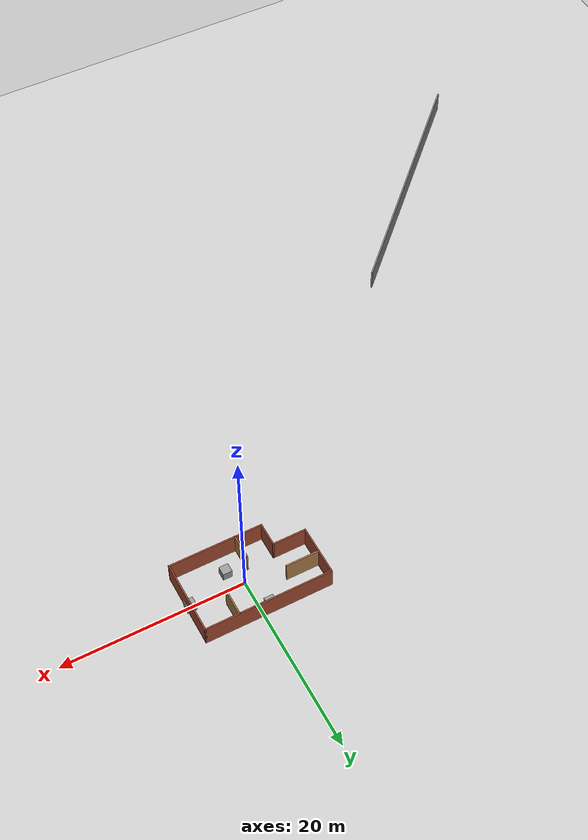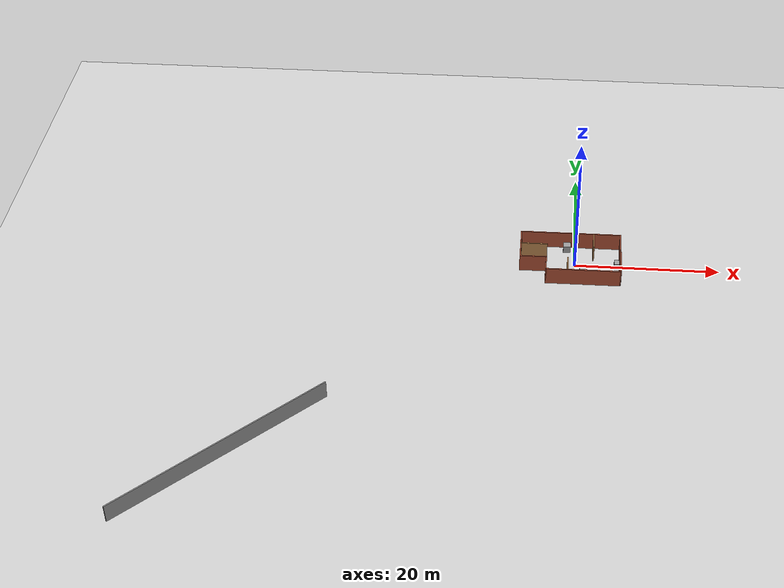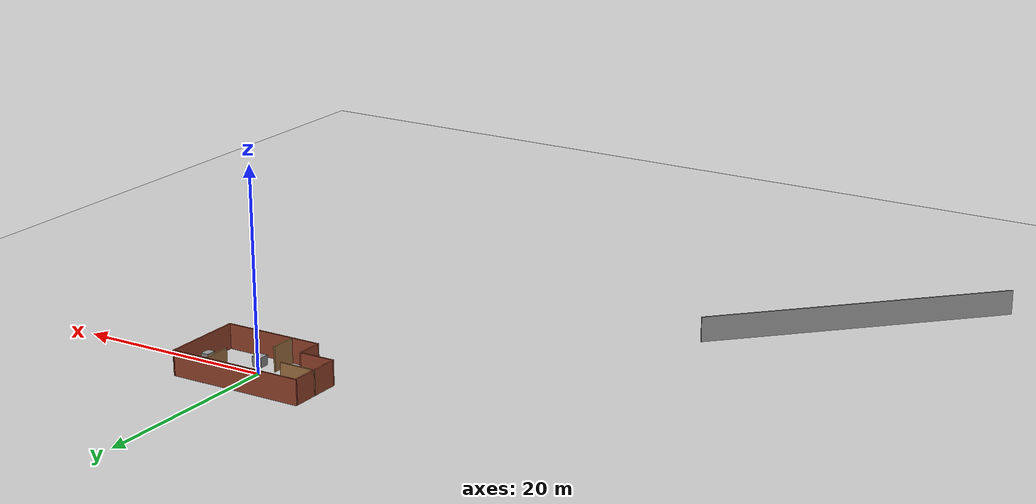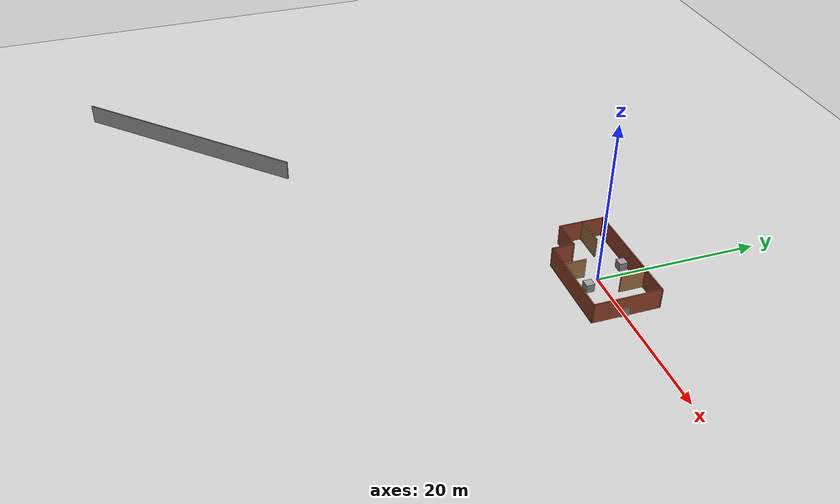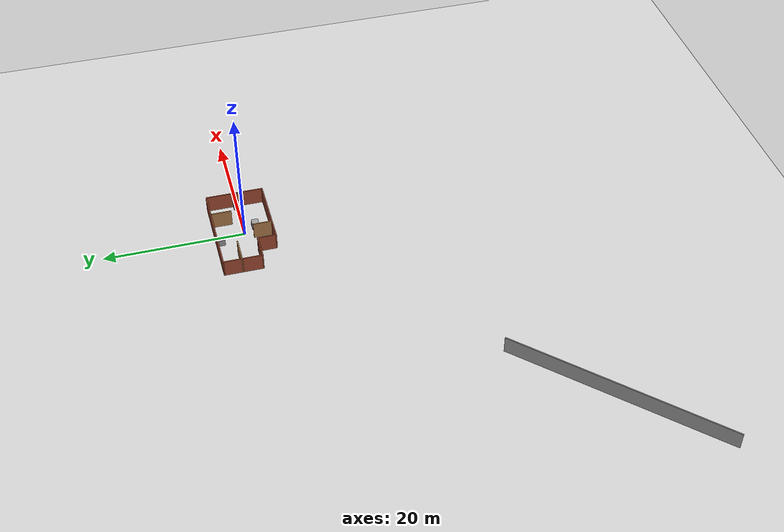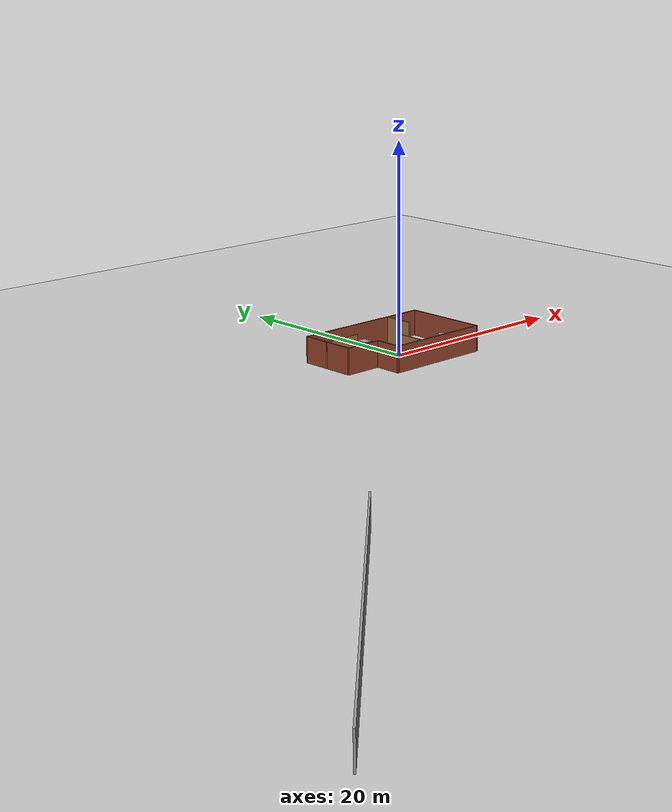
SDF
<sdf version='1.4'>
  <world name='default'>
    <!-- A global light source -->
    <include>
      <uri>model://sun</uri>
    </include>

    <!-- A ground plane -->
    <include>
      <uri>model://ground_plane</uri>
    </include>

    <physics type="ode">
      <real_time_update_rate>1000.0</real_time_update_rate>
      <max_step_size>0.001</max_step_size>
      <real_time_factor>1</real_time_factor>
      <ode>
        <solver>
          <type>quick</type>
          <iters>150</iters>
          <precon_iters>0</precon_iters>
          <sor>1.400000</sor>
          <use_dynamic_moi_rescaling>1</use_dynamic_moi_rescaling>
        </solver>
        <constraints>
          <cfm>0.00001</cfm>
          <erp>0.2</erp>
          <contact_max_correcting_vel>2000.000000</contact_max_correcting_vel>
          <contact_surface_layer>0.01000</contact_surface_layer>
        </constraints>
      </ode>
    </physics>

    <!-- Load world -->
    <include>
      <uri>model://home</uri>
    </include>

    <include>
      <name>box1</name>
      <uri>model://unit_box</uri>
      <pose>1.21529 -1.78228 0.5 0 -0 0</pose>
    </include>

    <include>
      <name>box2</name>
      <uri>model://unit_box</uri>
      <pose>-1.09981 3.49913 0.5 0 -0 0</pose>
    </include>

    <include>
      <name>box3</name>
      <uri>model://unit_box</uri>
      <pose>6.0 0 0.5 0 -0 0</pose>
    </include>

    <scene>
      <ambient>0.4 0.4 0.4 1</ambient>
      <background>0.7 0.7 0.7 1</background>
      <shadows>true</shadows>
    </scene>

    <gui fullscreen='0'>
      <camera name='user_camera'>
        <pose>0.8 0.0 12.0 0 1.5708 0</pose>
        <view_controller>orbit</view_controller>
      </camera>
    </gui>
  </world>
</sdf>

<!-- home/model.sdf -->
<sdf version='1.7'>
  <model name='home'>
    <pose>-23.5787 -23.4225 0 0 -0 0</pose>
    <link name='Wall_0'>
      <collision name='Wall_0_Collision'>
        <geometry>
          <box>
            <size>32 0.15 2.5</size>
          </box>
        </geometry>
        <pose>0 0 1.25 0 -0 0</pose>
      </collision>
      <visual name='Wall_0_Visual'>
        <pose>0 0 1.25 0 -0 0</pose>
        <geometry>
          <box>
            <size>32 0.15 2.5</size>
          </box>
        </geometry>
        <material>
          <script>
            <uri>file://media/materials/scripts/gazebo.material</uri>
            <name>Gazebo/Grey</name>
          </script>
          <ambient>1 1 1 1</ambient>
        </material>
        <meta>
          <layer>0</layer>
        </meta>
      </visual>
      <pose>-18.5974 -16.3462 0 0 -0 0.785398</pose>
    </link>
    <link name='Wall_14'>
      <collision name='Wall_14_Collision'>
        <geometry>
          <box>
            <size>2.75 0.15 2.5</size>
          </box>
        </geometry>
        <pose>0 0 1.25 0 -0 0</pose>
      </collision>
      <visual name='Wall_14_Visual'>
        <pose>0 0 1.25 0 -0 0</pose>
        <geometry>
          <box>
            <size>2.75 0.15 2.5</size>
          </box>
        </geometry>
        <material>
          <script>
            <uri>file://media/materials/scripts/gazebo.material</uri>
            <name>Gazebo/Wood</name>
          </script>
          <ambient>1 1 1 1</ambient>
        </material>
        <meta>
          <layer>0</layer>
        </meta>
      </visual>
      <pose>22.611 20.8524 0 0 -0 1.5708</pose>
    </link>
    <link name='Wall_16'>
      <collision name='Wall_16_Collision'>
        <geometry>
          <box>
            <size>3 0.15 2.5</size>
          </box>
        </geometry>
        <pose>0 0 1.25 0 -0 0</pose>
      </collision>
      <visual name='Wall_16_Visual'>
        <pose>0 0 1.25 0 -0 0</pose>
        <geometry>
          <box>
            <size>3 0.15 2.5</size>
          </box>
        </geometry>
        <material>
          <script>
            <uri>file://media/materials/scripts/gazebo.material</uri>
            <name>Gazebo/Wood</name>
          </script>
          <ambient>1 1 1 1</ambient>
        </material>
        <meta>
          <layer>0</layer>
        </meta>
      </visual>
      <pose>26.1871 26.1971 0 0 -0 -1.5708</pose>
    </link>
    <link name='Wall_18'>
      <collision name='Wall_18_Collision'>
        <geometry>
          <box>
            <size>2.75 0.15 2.5</size>
          </box>
        </geometry>
        <pose>0 0 1.25 0 -0 0</pose>
      </collision>
      <visual name='Wall_18_Visual'>
        <pose>0 0 1.25 0 -0 0</pose>
        <geometry>
          <box>
            <size>2.75 0.15 2.5</size>
          </box>
        </geometry>
        <material>
          <script>
            <uri>file://media/materials/scripts/gazebo.material</uri>
            <name>Gazebo/Bricks</name>
          </script>
          <ambient>1 1 1 1</ambient>
        </material>
        <meta>
          <layer>0</layer>
        </meta>
      </visual>
      <pose>19.6479 20.8379 0 0 -0 1.5708</pose>
    </link>
    <link name='Wall_19'>
      <collision name='Wall_19_Collision'>
        <geometry>
          <box>
            <size>3.75 0.15 2.5</size>
          </box>
        </geometry>
        <pose>0 0 1.25 0 -0 0</pose>
      </collision>
      <visual name='Wall_19_Visual'>
        <pose>0 0 1.25 0 -0 0</pose>
        <geometry>
          <box>
            <size>3.75 0.15 2.5</size>
          </box>
        </geometry>
        <material>
          <script>
            <uri>file://media/materials/scripts/gazebo.material</uri>
            <name>Gazebo/Bricks</name>
          </script>
          <ambient>1 1 1 1</ambient>
        </material>
        <meta>
          <layer>0</layer>
        </meta>
      </visual>
      <pose>17.8479 22.1379 0 0 -0 3.14159</pose>
    </link>
    <link name='Wall_2'>
      <collision name='Wall_2_Collision'>
        <geometry>
          <box>
            <size>10.3915 0.15 2.5</size>
          </box>
        </geometry>
        <pose>0 0 1.25 0 -0 0</pose>
      </collision>
      <visual name='Wall_2_Visual'>
        <pose>0 0 1.25 0 -0 0</pose>
        <geometry>
          <box>
            <size>10.3915 0.15 2.5</size>
          </box>
        </geometry>
        <material>
          <script>
            <uri>file://media/materials/scripts/gazebo.material</uri>
            <name>Gazebo/Bricks</name>
          </script>
          <ambient>1 1 1 1</ambient>
        </material>
        <meta>
          <layer>0</layer>
        </meta>
      </visual>
      <pose>24.7684 19.5379 0 0 -0 0</pose>
    </link>
    <link name='Wall_20'>
      <collision name='Wall_20_Collision'>
        <geometry>
          <box>
            <size>5.63417 0.15 2.5</size>
          </box>
        </geometry>
        <pose>0 0 1.25 0 -0 0</pose>
      </collision>
      <visual name='Wall_20_Visual'>
        <pose>0 0 1.25 0 -0 0</pose>
        <geometry>
          <box>
            <size>5.63417 0.15 2.5</size>
          </box>
        </geometry>
        <material>
          <script>
            <uri>file://media/materials/scripts/gazebo.material</uri>
            <name>Gazebo/Bricks</name>
          </script>
          <ambient>1 1 1 1</ambient>
        </material>
        <meta>
          <layer>0</layer>
        </meta>
      </visual>
      <pose>16.0475 24.88 0 0 -0 1.57095</pose>
    </link>
    <link name='Wall_22'>
      <collision name='Wall_22_Collision'>
        <geometry>
          <box>
            <size>3.75 0.15 2.5</size>
          </box>
        </geometry>
        <pose>0 0 1.25 0 -0 0</pose>
      </collision>
      <visual name='Wall_22_Visual'>
        <pose>0 0 1.25 0 -0 0</pose>
        <geometry>
          <box>
            <size>3.75 0.15 2.5</size>
          </box>
        </geometry>
        <material>
          <script>
            <uri>file://media/materials/scripts/gazebo.material</uri>
            <name>Gazebo/Wood</name>
          </script>
          <ambient>1 1 1 1</ambient>
        </material>
        <meta>
          <layer>0</layer>
        </meta>
      </visual>
      <pose>17.8411 25.0042 0 0 -0 0</pose>
    </link>
    <link name='Wall_4'>
      <collision name='Wall_4_Collision'>
        <geometry>
          <box>
            <size>8.25 0.15 2.5</size>
          </box>
        </geometry>
        <pose>0 0 1.25 0 -0 0</pose>
      </collision>
      <visual name='Wall_4_Visual'>
        <pose>0 0 1.25 0 -0 0</pose>
        <geometry>
          <box>
            <size>8.25 0.15 2.5</size>
          </box>
        </geometry>
        <material>
          <script>
            <uri>file://media/materials/scripts/gazebo.material</uri>
            <name>Gazebo/Bricks</name>
          </script>
          <ambient>1 1 1 1</ambient>
        </material>
        <meta>
          <layer>0</layer>
        </meta>
      </visual>
      <pose>29.8889 23.5879 0 0 -0 1.5708</pose>
    </link>
    <link name='Wall_5'>
      <collision name='Wall_5_Collision'>
        <geometry>
          <box>
            <size>13.9926 0.15 2.5</size>
          </box>
        </geometry>
        <pose>0 0 1.25 0 -0 0</pose>
      </collision>
      <visual name='Wall_5_Visual'>
        <pose>0 0 1.25 0 -0 0</pose>
        <geometry>
          <box>
            <size>13.9926 0.15 2.5</size>
          </box>
        </geometry>
        <material>
          <script>
            <uri>file://media/materials/scripts/gazebo.material</uri>
            <name>Gazebo/Bricks</name>
          </script>
          <ambient>1 1 1 1</ambient>
        </material>
        <meta>
          <layer>0</layer>
        </meta>
      </visual>
      <pose>22.9676 27.6354 0 0 -0 -3.14123</pose>
    </link>
    <static>1</static>
  </model>
</sdf>

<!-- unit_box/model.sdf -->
<sdf version='1.7'>
  <model name='unit_box'>
    <link name='link'>
      <inertial>
        <mass>1</mass>
        <inertia>
          <ixx>0.166667</ixx>
          <ixy>0</ixy>
          <ixz>0</ixz>
          <iyy>0.166667</iyy>
          <iyz>0</iyz>
          <izz>0.166667</izz>
        </inertia>
        <pose>0 0 0 0 -0 0</pose>
      </inertial>
      <collision name='collision'>
        <geometry>
          <box>
            <size>1 1 1</size>
          </box>
        </geometry>
        <max_contacts>10</max_contacts>
        <surface>
          <contact>
            <ode/>
          </contact>
          <bounce/>
          <friction>
            <torsional>
              <ode/>
            </torsional>
            <ode/>
          </friction>
        </surface>
      </collision>
      <visual name='visual'>
        <geometry>
          <box>
            <size>1 1 1</size>
          </box>
        </geometry>
        <material>
          <script>
            <name>Gazebo/Grey</name>
            <uri>file://media/materials/scripts/gazebo.material</uri>
          </script>
        </material>
      </visual>
      <self_collide>0</self_collide>
      <enable_wind>0</enable_wind>
      <kinematic>0</kinematic>
    </link>
  </model>
</sdf>
